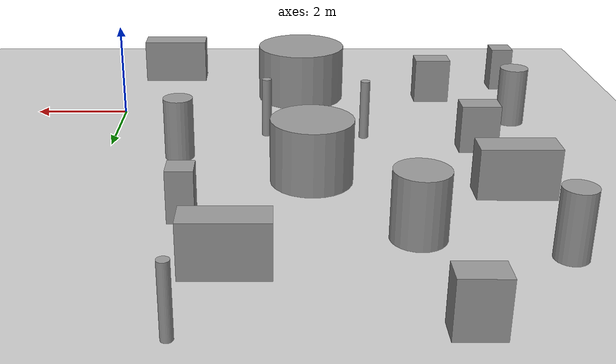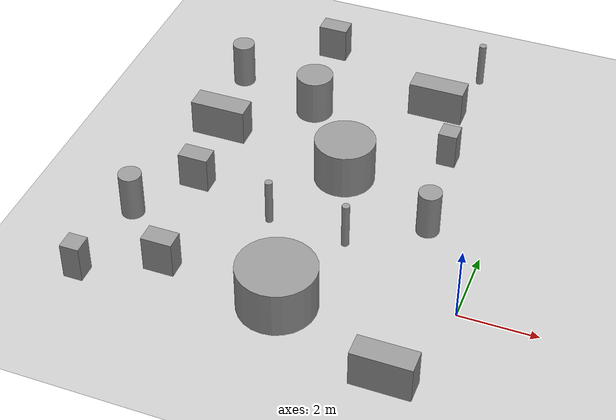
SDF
<sdf version="1.7">
 <world name="default">
  <model name="ground_plane">
   <static>1</static>
   <link name="link">
    <collision name="collision">
     <geometry><plane><normal>0 0 1</normal><size>100 100</size></plane></geometry>
     <surface>
      <contact><collide_bitmask>65535</collide_bitmask></contact>
      <friction><ode><mu>100</mu><mu2>50</mu2></ode></friction>
     </surface>
    </collision>
    <visual name="visual">
     <cast_shadows>0</cast_shadows>
     <geometry><plane><normal>0 0 1</normal><size>100 100</size></plane></geometry>
     <material>
      <script><uri>file://media/materials/scripts/gazebo.material</uri><name>Gazebo/Grey</name></script>
     </material>
    </visual>
   </link>
  </model>
  <model name="Untitled">
   <link name="link_0_clone_2">
    <inertial>
     <mass>1</mass>
     <inertia><ixx>0.145833</ixx><ixy>0</ixy><ixz>0</ixz><iyy>0.145833</iyy><iyz>0</iyz><izz>0.125</izz></inertia>
    </inertial>
    <pose>-3.58175 -0.821421 0 0 -0 0</pose>
    <visual name="visual">
     <geometry><cylinder><radius>1</radius><length>1.5</length></cylinder></geometry>
     <material>
      <lighting>1</lighting>
      <script><uri>file://media/materials/scripts/gazebo.material</uri><name>Gazebo/Grey</name></script>
      <shader type="pixel"><normal_map>__default__</normal_map></shader>
      <ambient>0.3 0.3 0.3 1</ambient>
      <diffuse>0.7 0.7 0.7 1</diffuse>
      <specular>0.01 0.01 0.01 1</specular>
      <emissive>0 0 0 1</emissive>
     </material>
    </visual>
    <collision name="collision">
     <geometry><cylinder><radius>1</radius><length>1.5</length></cylinder></geometry>
     <surface>
      <friction>
       <ode><mu>1</mu><mu2>1</mu2><fdir1>0 0 0</fdir1><slip1>0</slip1><slip2>0</slip2></ode>
       <torsional>
        <coefficient>1</coefficient>
        <patch_radius>0</patch_radius>
        <surface_radius>0</surface_radius>
        <use_patch_radius>1</use_patch_radius>
        <ode><slip>0</slip></ode>
       </torsional>
      </friction>
      <bounce><restitution_coefficient>0</restitution_coefficient><threshold>1e+06</threshold></bounce>
      <contact>
       <collide_without_contact>0</collide_without_contact>
       <collide_without_contact_bitmask>1</collide_without_contact_bitmask>
       <collide_bitmask>1</collide_bitmask>
       <ode>
        <soft_cfm>0</soft_cfm>
        <soft_erp>0.2</soft_erp>
        <kp>1e+13</kp>
        <kd>1</kd>
        <max_vel>0.01</max_vel>
        <min_depth>0</min_depth>
       </ode>
       <bullet>
        <split_impulse>1</split_impulse>
        <split_impulse_penetration_threshold>-0.01</split_impulse_penetration_threshold>
        <soft_cfm>0</soft_cfm>
        <soft_erp>0.2</soft_erp>
        <kp>1e+13</kp>
        <kd>1</kd>
       </bullet>
      </contact>
     </surface>
    </collision>
   </link>
   <link name="link_0_clone_2_clone_0_clone_clone_1">
    <inertial>
     <mass>1</mass>
     <inertia><ixx>0.145833</ixx><ixy>0</ixy><ixz>0</ixz><iyy>0.145833</iyy><iyz>0</iyz><izz>0.125</izz></inertia>
    </inertial>
    <pose>-7.75767 7.14289 0 0 -0 0</pose>
    <visual name="visual">
     <geometry><cylinder><radius>0.3</radius><length>1.5</length></cylinder></geometry>
     <material>
      <lighting>1</lighting>
      <script><uri>file://media/materials/scripts/gazebo.material</uri><name>Gazebo/Grey</name></script>
      <shader type="pixel"><normal_map>__default__</normal_map></shader>
      <ambient>0.3 0.3 0.3 1</ambient>
      <diffuse>0.7 0.7 0.7 1</diffuse>
      <specular>0.01 0.01 0.01 1</specular>
      <emissive>0 0 0 1</emissive>
     </material>
    </visual>
    <collision name="collision">
     <geometry><cylinder><radius>0.3</radius><length>1.5</length></cylinder></geometry>
     <surface>
      <friction>
       <ode><mu>1</mu><mu2>1</mu2><fdir1>0 0 0</fdir1><slip1>0</slip1><slip2>0</slip2></ode>
       <torsional>
        <coefficient>1</coefficient>
        <patch_radius>0</patch_radius>
        <surface_radius>0</surface_radius>
        <use_patch_radius>1</use_patch_radius>
        <ode><slip>0</slip></ode>
       </torsional>
      </friction>
      <bounce><restitution_coefficient>0</restitution_coefficient><threshold>1e+06</threshold></bounce>
      <contact>
       <collide_without_contact>0</collide_without_contact>
       <collide_without_contact_bitmask>1</collide_without_contact_bitmask>
       <collide_bitmask>1</collide_bitmask>
       <ode>
        <soft_cfm>0</soft_cfm>
        <soft_erp>0.2</soft_erp>
        <kp>1e+13</kp>
        <kd>1</kd>
        <max_vel>0.01</max_vel>
        <min_depth>0</min_depth>
       </ode>
       <bullet>
        <split_impulse>1</split_impulse>
        <split_impulse_penetration_threshold>-0.01</split_impulse_penetration_threshold>
        <soft_cfm>0</soft_cfm>
        <soft_erp>0.2</soft_erp>
        <kp>1e+13</kp>
        <kd>1</kd>
       </bullet>
      </contact>
     </surface>
    </collision>
   </link>
   <link name="link_0_clone_2_clone_0_clone_clone_2">
    <inertial>
     <mass>1</mass>
     <inertia><ixx>0.145833</ixx><ixy>0</ixy><ixz>0</ixz><iyy>0.145833</iyy><iyz>0</iyz><izz>0.125</izz></inertia>
    </inertial>
    <pose>-1.01347 2.94075 0 0 -0 0</pose>
    <visual name="visual">
     <geometry><cylinder><radius>0.3</radius><length>1.5</length></cylinder></geometry>
     <material>
      <lighting>1</lighting>
      <script><uri>file://media/materials/scripts/gazebo.material</uri><name>Gazebo/Grey</name></script>
      <shader type="pixel"><normal_map>__default__</normal_map></shader>
      <ambient>0.3 0.3 0.3 1</ambient>
      <diffuse>0.7 0.7 0.7 1</diffuse>
      <specular>0.01 0.01 0.01 1</specular>
      <emissive>0 0 0 1</emissive>
     </material>
    </visual>
    <collision name="collision">
     <geometry><cylinder><radius>0.3</radius><length>1.5</length></cylinder></geometry>
     <surface>
      <friction>
       <ode><mu>1</mu><mu2>1</mu2><fdir1>0 0 0</fdir1><slip1>0</slip1><slip2>0</slip2></ode>
       <torsional>
        <coefficient>1</coefficient>
        <patch_radius>0</patch_radius>
        <surface_radius>0</surface_radius>
        <use_patch_radius>1</use_patch_radius>
        <ode><slip>0</slip></ode>
       </torsional>
      </friction>
      <bounce><restitution_coefficient>0</restitution_coefficient><threshold>1e+06</threshold></bounce>
      <contact>
       <collide_without_contact>0</collide_without_contact>
       <collide_without_contact_bitmask>1</collide_without_contact_bitmask>
       <collide_bitmask>1</collide_bitmask>
       <ode>
        <soft_cfm>0</soft_cfm>
        <soft_erp>0.2</soft_erp>
        <kp>1e+13</kp>
        <kd>1</kd>
        <max_vel>0.01</max_vel>
        <min_depth>0</min_depth>
       </ode>
       <bullet>
        <split_impulse>1</split_impulse>
        <split_impulse_penetration_threshold>-0.01</split_impulse_penetration_threshold>
        <soft_cfm>0</soft_cfm>
        <soft_erp>0.2</soft_erp>
        <kp>1e+13</kp>
        <kd>1</kd>
       </bullet>
      </contact>
     </surface>
    </collision>
   </link>
   <link name="link_0_clone_2_clone_0_clone_clone_clone">
    <inertial>
     <mass>1</mass>
     <inertia><ixx>0.145833</ixx><ixy>0</ixy><ixz>0</ixz><iyy>0.145833</iyy><iyz>0</iyz><izz>0.125</izz></inertia>
    </inertial>
    <pose>-8.2311 0.933708 0 0 -0 0</pose>
    <visual name="visual">
     <geometry><cylinder><radius>0.3</radius><length>1.5</length></cylinder></geometry>
     <material>
      <lighting>1</lighting>
      <script><uri>file://media/materials/scripts/gazebo.material</uri><name>Gazebo/Grey</name></script>
      <shader type="pixel"><normal_map>__default__</normal_map></shader>
      <ambient>0.3 0.3 0.3 1</ambient>
      <diffuse>0.7 0.7 0.7 1</diffuse>
      <specular>0.01 0.01 0.01 1</specular>
      <emissive>0 0 0 1</emissive>
     </material>
    </visual>
    <collision name="collision">
     <geometry><cylinder><radius>0.3</radius><length>1.5</length></cylinder></geometry>
     <surface>
      <friction>
       <ode><mu>1</mu><mu2>1</mu2><fdir1>0 0 0</fdir1><slip1>0</slip1><slip2>0</slip2></ode>
       <torsional>
        <coefficient>1</coefficient>
        <patch_radius>0</patch_radius>
        <surface_radius>0</surface_radius>
        <use_patch_radius>1</use_patch_radius>
        <ode><slip>0</slip></ode>
       </torsional>
      </friction>
      <bounce><restitution_coefficient>0</restitution_coefficient><threshold>1e+06</threshold></bounce>
      <contact>
       <collide_without_contact>0</collide_without_contact>
       <collide_without_contact_bitmask>1</collide_without_contact_bitmask>
       <collide_bitmask>1</collide_bitmask>
       <ode>
        <soft_cfm>0</soft_cfm>
        <soft_erp>0.2</soft_erp>
        <kp>1e+13</kp>
        <kd>1</kd>
        <max_vel>0.01</max_vel>
        <min_depth>0</min_depth>
       </ode>
       <bullet>
        <split_impulse>1</split_impulse>
        <split_impulse_penetration_threshold>-0.01</split_impulse_penetration_threshold>
        <soft_cfm>0</soft_cfm>
        <soft_erp>0.2</soft_erp>
        <kp>1e+13</kp>
        <kd>1</kd>
       </bullet>
      </contact>
     </surface>
    </collision>
   </link>
   <link name="link_0_clone_2_clone_1">
    <inertial>
     <mass>1</mass>
     <inertia><ixx>0.145833</ixx><ixy>0</ixy><ixz>0</ixz><iyy>0.145833</iyy><iyz>0</iyz><izz>0.125</izz></inertia>
    </inertial>
    <pose>-3.66206 4.13062 0 0 -0 0</pose>
    <visual name="visual">
     <geometry><cylinder><radius>0.8</radius><length>1.5</length></cylinder></geometry>
     <material>
      <lighting>1</lighting>
      <script><uri>file://media/materials/scripts/gazebo.material</uri><name>Gazebo/Grey</name></script>
      <shader type="pixel"><normal_map>__default__</normal_map></shader>
      <ambient>0.3 0.3 0.3 1</ambient>
      <diffuse>0.7 0.7 0.7 1</diffuse>
      <specular>0.01 0.01 0.01 1</specular>
      <emissive>0 0 0 1</emissive>
     </material>
    </visual>
    <collision name="collision">
     <geometry><cylinder><radius>0.8</radius><length>1.5</length></cylinder></geometry>
     <surface>
      <friction>
       <ode><mu>1</mu><mu2>1</mu2><fdir1>0 0 0</fdir1><slip1>0</slip1><slip2>0</slip2></ode>
       <torsional>
        <coefficient>1</coefficient>
        <patch_radius>0</patch_radius>
        <surface_radius>0</surface_radius>
        <use_patch_radius>1</use_patch_radius>
        <ode><slip>0</slip></ode>
       </torsional>
      </friction>
      <bounce><restitution_coefficient>0</restitution_coefficient><threshold>1e+06</threshold></bounce>
      <contact>
       <collide_without_contact>0</collide_without_contact>
       <collide_without_contact_bitmask>1</collide_without_contact_bitmask>
       <collide_bitmask>1</collide_bitmask>
       <ode>
        <soft_cfm>0</soft_cfm>
        <soft_erp>0.2</soft_erp>
        <kp>1e+13</kp>
        <kd>1</kd>
        <max_vel>0.01</max_vel>
        <min_depth>0</min_depth>
       </ode>
       <bullet>
        <split_impulse>1</split_impulse>
        <split_impulse_penetration_threshold>-0.01</split_impulse_penetration_threshold>
        <soft_cfm>0</soft_cfm>
        <soft_erp>0.2</soft_erp>
        <kp>1e+13</kp>
        <kd>1</kd>
       </bullet>
      </contact>
     </surface>
    </collision>
   </link>
   <link name="link_0_clone_2_clone_clone">
    <inertial>
     <mass>1</mass>
     <inertia><ixx>0.145833</ixx><ixy>0</ixy><ixz>0</ixz><iyy>0.145833</iyy><iyz>0</iyz><izz>0.125</izz></inertia>
    </inertial>
    <pose>-5.37987 6.48036 0 0 -0 0</pose>
    <visual name="visual">
     <geometry><cylinder><radius>0.5</radius><length>1.5</length></cylinder></geometry>
     <material>
      <lighting>1</lighting>
      <script><uri>file://media/materials/scripts/gazebo.material</uri><name>Gazebo/Grey</name></script>
      <shader type="pixel"><normal_map>__default__</normal_map></shader>
      <ambient>0.3 0.3 0.3 1</ambient>
      <diffuse>0.7 0.7 0.7 1</diffuse>
      <specular>0.01 0.01 0.01 1</specular>
      <emissive>0 0 0 1</emissive>
     </material>
    </visual>
    <collision name="collision">
     <geometry><cylinder><radius>0.5</radius><length>1.5</length></cylinder></geometry>
     <surface>
      <friction>
       <ode><mu>1</mu><mu2>1</mu2><fdir1>0 0 0</fdir1><slip1>0</slip1><slip2>0</slip2></ode>
       <torsional>
        <coefficient>1</coefficient>
        <patch_radius>0</patch_radius>
        <surface_radius>0</surface_radius>
        <use_patch_radius>1</use_patch_radius>
        <ode><slip>0</slip></ode>
       </torsional>
      </friction>
      <bounce><restitution_coefficient>0</restitution_coefficient><threshold>1e+06</threshold></bounce>
      <contact>
       <collide_without_contact>0</collide_without_contact>
       <collide_without_contact_bitmask>1</collide_without_contact_bitmask>
       <collide_bitmask>1</collide_bitmask>
       <ode>
        <soft_cfm>0</soft_cfm>
        <soft_erp>0.2</soft_erp>
        <kp>1e+13</kp>
        <kd>1</kd>
        <max_vel>0.01</max_vel>
        <min_depth>0</min_depth>
       </ode>
       <bullet>
        <split_impulse>1</split_impulse>
        <split_impulse_penetration_threshold>-0.01</split_impulse_penetration_threshold>
        <soft_cfm>0</soft_cfm>
        <soft_erp>0.2</soft_erp>
        <kp>1e+13</kp>
        <kd>1</kd>
       </bullet>
      </contact>
     </surface>
    </collision>
   </link>
   <link name="link_0_clone_2_clone_clone_0">
    <inertial>
     <mass>1</mass>
     <inertia><ixx>0.145833</ixx><ixy>0</ixy><ixz>0</ixz><iyy>0.145833</iyy><iyz>0</iyz><izz>0.125</izz></inertia>
    </inertial>
    <pose>-4.86844 1.87102 0 0 -0 0</pose>
    <visual name="visual">
     <geometry><cylinder><radius>0.1</radius><length>1.5</length></cylinder></geometry>
     <material>
      <lighting>1</lighting>
      <script><uri>file://media/materials/scripts/gazebo.material</uri><name>Gazebo/Grey</name></script>
      <shader type="pixel"><normal_map>__default__</normal_map></shader>
      <ambient>0.3 0.3 0.3 1</ambient>
      <diffuse>0.7 0.7 0.7 1</diffuse>
      <specular>0.01 0.01 0.01 1</specular>
      <emissive>0 0 0 1</emissive>
     </material>
    </visual>
    <collision name="collision">
     <geometry><cylinder><radius>0.1</radius><length>1.5</length></cylinder></geometry>
     <surface>
      <friction>
       <ode><mu>1</mu><mu2>1</mu2><fdir1>0 0 0</fdir1><slip1>0</slip1><slip2>0</slip2></ode>
       <torsional>
        <coefficient>1</coefficient>
        <patch_radius>0</patch_radius>
        <surface_radius>0</surface_radius>
        <use_patch_radius>1</use_patch_radius>
        <ode><slip>0</slip></ode>
       </torsional>
      </friction>
      <bounce><restitution_coefficient>0</restitution_coefficient><threshold>1e+06</threshold></bounce>
      <contact>
       <collide_without_contact>0</collide_without_contact>
       <collide_without_contact_bitmask>1</collide_without_contact_bitmask>
       <collide_bitmask>1</collide_bitmask>
       <ode>
        <soft_cfm>0</soft_cfm>
        <soft_erp>0.2</soft_erp>
        <kp>1e+13</kp>
        <kd>1</kd>
        <max_vel>0.01</max_vel>
        <min_depth>0</min_depth>
       </ode>
       <bullet>
        <split_impulse>1</split_impulse>
        <split_impulse_penetration_threshold>-0.01</split_impulse_penetration_threshold>
        <soft_cfm>0</soft_cfm>
        <soft_erp>0.2</soft_erp>
        <kp>1e+13</kp>
        <kd>1</kd>
       </bullet>
      </contact>
     </surface>
    </collision>
   </link>
   <link name="link_0_clone_2_clone_clone_4">
    <inertial>
     <mass>1</mass>
     <inertia><ixx>0.145833</ixx><ixy>0</ixy><ixz>0</ixz><iyy>0.145833</iyy><iyz>0</iyz><izz>0.125</izz></inertia>
    </inertial>
    <pose>-1.4611 9.43155 0 0 -0 0</pose>
    <visual name="visual">
     <geometry><cylinder><radius>0.1</radius><length>1.5</length></cylinder></geometry>
     <material>
      <lighting>1</lighting>
      <script><uri>file://media/materials/scripts/gazebo.material</uri><name>Gazebo/Grey</name></script>
      <shader type="pixel"><normal_map>__default__</normal_map></shader>
      <ambient>0.3 0.3 0.3 1</ambient>
      <diffuse>0.7 0.7 0.7 1</diffuse>
      <specular>0.01 0.01 0.01 1</specular>
      <emissive>0 0 0 1</emissive>
     </material>
    </visual>
    <collision name="collision">
     <geometry><cylinder><radius>0.1</radius><length>1.5</length></cylinder></geometry>
     <surface>
      <friction>
       <ode><mu>1</mu><mu2>1</mu2><fdir1>0 0 0</fdir1><slip1>0</slip1><slip2>0</slip2></ode>
       <torsional>
        <coefficient>1</coefficient>
        <patch_radius>0</patch_radius>
        <surface_radius>0</surface_radius>
        <use_patch_radius>1</use_patch_radius>
        <ode><slip>0</slip></ode>
       </torsional>
      </friction>
      <bounce><restitution_coefficient>0</restitution_coefficient><threshold>1e+06</threshold></bounce>
      <contact>
       <collide_without_contact>0</collide_without_contact>
       <collide_without_contact_bitmask>1</collide_without_contact_bitmask>
       <collide_bitmask>1</collide_bitmask>
       <ode>
        <soft_cfm>0</soft_cfm>
        <soft_erp>0.2</soft_erp>
        <kp>1e+13</kp>
        <kd>1</kd>
        <max_vel>0.01</max_vel>
        <min_depth>0</min_depth>
       </ode>
       <bullet>
        <split_impulse>1</split_impulse>
        <split_impulse_penetration_threshold>-0.01</split_impulse_penetration_threshold>
        <soft_cfm>0</soft_cfm>
        <soft_erp>0.2</soft_erp>
        <kp>1e+13</kp>
        <kd>1</kd>
       </bullet>
      </contact>
     </surface>
    </collision>
   </link>
   <link name="link_0_clone_2_clone_clone_6_clone">
    <inertial>
     <mass>1</mass>
     <inertia><ixx>0.145833</ixx><ixy>0</ixy><ixz>0</ixz><iyy>0.145833</iyy><iyz>0</iyz><izz>0.125</izz></inertia>
    </inertial>
    <pose>-2.78369 1.73127 0 0 -0 0</pose>
    <visual name="visual">
     <geometry><cylinder><radius>0.1</radius><length>1.5</length></cylinder></geometry>
     <material>
      <lighting>1</lighting>
      <script><uri>file://media/materials/scripts/gazebo.material</uri><name>Gazebo/Grey</name></script>
      <shader type="pixel"><normal_map>__default__</normal_map></shader>
      <ambient>0.3 0.3 0.3 1</ambient>
      <diffuse>0.7 0.7 0.7 1</diffuse>
      <specular>0.01 0.01 0.01 1</specular>
      <emissive>0 0 0 1</emissive>
     </material>
    </visual>
    <collision name="collision">
     <geometry><cylinder><radius>0.1</radius><length>1.5</length></cylinder></geometry>
     <surface>
      <friction>
       <ode><mu>1</mu><mu2>1</mu2><fdir1>0 0 0</fdir1><slip1>0</slip1><slip2>0</slip2></ode>
       <torsional>
        <coefficient>1</coefficient>
        <patch_radius>0</patch_radius>
        <surface_radius>0</surface_radius>
        <use_patch_radius>1</use_patch_radius>
        <ode><slip>0</slip></ode>
       </torsional>
      </friction>
      <bounce><restitution_coefficient>0</restitution_coefficient><threshold>1e+06</threshold></bounce>
      <contact>
       <collide_without_contact>0</collide_without_contact>
       <collide_without_contact_bitmask>1</collide_without_contact_bitmask>
       <collide_bitmask>1</collide_bitmask>
       <ode>
        <soft_cfm>0</soft_cfm>
        <soft_erp>0.2</soft_erp>
        <kp>1e+13</kp>
        <kd>1</kd>
        <max_vel>0.01</max_vel>
        <min_depth>0</min_depth>
       </ode>
       <bullet>
        <split_impulse>1</split_impulse>
        <split_impulse_penetration_threshold>-0.01</split_impulse_penetration_threshold>
        <soft_cfm>0</soft_cfm>
        <soft_erp>0.2</soft_erp>
        <kp>1e+13</kp>
        <kd>1</kd>
       </bullet>
      </contact>
     </surface>
    </collision>
   </link>
   <link name="link_3_clone_0_clone">
    <inertial>
     <mass>1</mass>
     <inertia>
      <ixx>0.166667</ixx>
      <ixy>0</ixy>
      <ixz>0</ixz>
      <iyy>0.166667</iyy>
      <iyz>0</iyz>
      <izz>0.166667</izz>
     </inertia>
    </inertial>
    <pose>-1.31899 5.75105 0 0 -0 0</pose>
    <visual name="visual">
     <geometry><box><size>0.5 0.5 1</size></box></geometry>
     <material>
      <lighting>1</lighting>
      <script><uri>file://media/materials/scripts/gazebo.material</uri><name>Gazebo/Grey</name></script>
      <shader type="pixel"><normal_map>__default__</normal_map></shader>
      <ambient>0.3 0.3 0.3 1</ambient>
      <diffuse>0.7 0.7 0.7 1</diffuse>
      <specular>0.01 0.01 0.01 1</specular>
      <emissive>0 0 0 1</emissive>
     </material>
    </visual>
    <collision name="collision">
     <geometry><box><size>0.5 0.5 1</size></box></geometry>
     <surface>
      <friction>
       <ode><mu>1</mu><mu2>1</mu2><fdir1>0 0 0</fdir1><slip1>0</slip1><slip2>0</slip2></ode>
       <torsional>
        <coefficient>1</coefficient>
        <patch_radius>0</patch_radius>
        <surface_radius>0</surface_radius>
        <use_patch_radius>1</use_patch_radius>
        <ode><slip>0</slip></ode>
       </torsional>
      </friction>
      <bounce><restitution_coefficient>0</restitution_coefficient><threshold>1e+06</threshold></bounce>
      <contact>
       <collide_without_contact>0</collide_without_contact>
       <collide_without_contact_bitmask>1</collide_without_contact_bitmask>
       <collide_bitmask>1</collide_bitmask>
       <ode>
        <soft_cfm>0</soft_cfm>
        <soft_erp>0.2</soft_erp>
        <kp>1e+13</kp>
        <kd>1</kd>
        <max_vel>0.01</max_vel>
        <min_depth>0</min_depth>
       </ode>
       <bullet>
        <split_impulse>1</split_impulse>
        <split_impulse_penetration_threshold>-0.01</split_impulse_penetration_threshold>
        <soft_cfm>0</soft_cfm>
        <soft_erp>0.2</soft_erp>
        <kp>1e+13</kp>
        <kd>1</kd>
       </bullet>
      </contact>
     </surface>
    </collision>
   </link>
   <link name="link_3_clone_0_clone_1">
    <inertial>
     <mass>1</mass>
     <inertia>
      <ixx>0.166667</ixx>
      <ixy>0</ixy>
      <ixz>0</ixz>
      <iyy>0.166667</iyy>
      <iyz>0</iyz>
      <izz>0.166667</izz>
     </inertia>
    </inertial>
    <pose>-8.51357 -1.53204 0 0 -0 0</pose>
    <visual name="visual">
     <geometry><box><size>0.5 0.5 1</size></box></geometry>
     <material>
      <lighting>1</lighting>
      <script><uri>file://media/materials/scripts/gazebo.material</uri><name>Gazebo/Grey</name></script>
      <shader type="pixel"><normal_map>__default__</normal_map></shader>
      <ambient>0.3 0.3 0.3 1</ambient>
      <diffuse>0.7 0.7 0.7 1</diffuse>
      <specular>0.01 0.01 0.01 1</specular>
      <emissive>0 0 0 1</emissive>
     </material>
    </visual>
    <collision name="collision">
     <geometry><box><size>0.5 0.5 1</size></box></geometry>
     <surface>
      <friction>
       <ode><mu>1</mu><mu2>1</mu2><fdir1>0 0 0</fdir1><slip1>0</slip1><slip2>0</slip2></ode>
       <torsional>
        <coefficient>1</coefficient>
        <patch_radius>0</patch_radius>
        <surface_radius>0</surface_radius>
        <use_patch_radius>1</use_patch_radius>
        <ode><slip>0</slip></ode>
       </torsional>
      </friction>
      <bounce><restitution_coefficient>0</restitution_coefficient><threshold>1e+06</threshold></bounce>
      <contact>
       <collide_without_contact>0</collide_without_contact>
       <collide_without_contact_bitmask>1</collide_without_contact_bitmask>
       <collide_bitmask>1</collide_bitmask>
       <ode>
        <soft_cfm>0</soft_cfm>
        <soft_erp>0.2</soft_erp>
        <kp>1e+13</kp>
        <kd>1</kd>
        <max_vel>0.01</max_vel>
        <min_depth>0</min_depth>
       </ode>
       <bullet>
        <split_impulse>1</split_impulse>
        <split_impulse_penetration_threshold>-0.01</split_impulse_penetration_threshold>
        <soft_cfm>0</soft_cfm>
        <soft_erp>0.2</soft_erp>
        <kp>1e+13</kp>
        <kd>1</kd>
       </bullet>
      </contact>
     </surface>
    </collision>
   </link>
   <link name="link_3_clone_1">
    <inertial>
     <mass>1</mass>
     <inertia>
      <ixx>0.166667</ixx>
      <ixy>0</ixy>
      <ixz>0</ixz>
      <iyy>0.166667</iyy>
      <iyz>0</iyz>
      <izz>0.166667</izz>
     </inertia>
    </inertial>
    <pose>-7.15883 2.54736 0 0 -0 0</pose>
    <visual name="visual">
     <geometry><box><size>0.8 0.5 1</size></box></geometry>
     <material>
      <lighting>1</lighting>
      <script><uri>file://media/materials/scripts/gazebo.material</uri><name>Gazebo/Grey</name></script>
      <shader type="pixel"><normal_map>__default__</normal_map></shader>
      <ambient>0.3 0.3 0.3 1</ambient>
      <diffuse>0.7 0.7 0.7 1</diffuse>
      <specular>0.01 0.01 0.01 1</specular>
      <emissive>0 0 0 1</emissive>
     </material>
    </visual>
    <collision name="collision">
     <geometry><box><size>0.8 0.5 1</size></box></geometry>
     <surface>
      <friction>
       <ode><mu>1</mu><mu2>1</mu2><fdir1>0 0 0</fdir1><slip1>0</slip1><slip2>0</slip2></ode>
       <torsional>
        <coefficient>1</coefficient>
        <patch_radius>0</patch_radius>
        <surface_radius>0</surface_radius>
        <use_patch_radius>1</use_patch_radius>
        <ode><slip>0</slip></ode>
       </torsional>
      </friction>
      <bounce><restitution_coefficient>0</restitution_coefficient><threshold>1e+06</threshold></bounce>
      <contact>
       <collide_without_contact>0</collide_without_contact>
       <collide_without_contact_bitmask>1</collide_without_contact_bitmask>
       <collide_bitmask>1</collide_bitmask>
       <ode>
        <soft_cfm>0</soft_cfm>
        <soft_erp>0.2</soft_erp>
        <kp>1e+13</kp>
        <kd>1</kd>
        <max_vel>0.01</max_vel>
        <min_depth>0</min_depth>
       </ode>
       <bullet>
        <split_impulse>1</split_impulse>
        <split_impulse_penetration_threshold>-0.01</split_impulse_penetration_threshold>
        <soft_cfm>0</soft_cfm>
        <soft_erp>0.2</soft_erp>
        <kp>1e+13</kp>
        <kd>1</kd>
       </bullet>
      </contact>
     </surface>
    </collision>
   </link>
   <link name="link_3_clone_1_clone">
    <inertial>
     <mass>1</mass>
     <inertia>
      <ixx>0.166667</ixx>
      <ixy>0</ixy>
      <ixz>0</ixz>
      <iyy>0.166667</iyy>
      <iyz>0</iyz>
      <izz>0.166667</izz>
     </inertia>
    </inertial>
    <pose>-6.67372 -0.615565 0 0 -0 0</pose>
    <visual name="visual">
     <geometry><box><size>0.8 0.5 1</size></box></geometry>
     <material>
      <lighting>1</lighting>
      <script><uri>file://media/materials/scripts/gazebo.material</uri><name>Gazebo/Grey</name></script>
      <shader type="pixel"><normal_map>__default__</normal_map></shader>
      <ambient>0.3 0.3 0.3 1</ambient>
      <diffuse>0.7 0.7 0.7 1</diffuse>
      <specular>0.01 0.01 0.01 1</specular>
      <emissive>0 0 0 1</emissive>
     </material>
    </visual>
    <collision name="collision">
     <geometry><box><size>0.8 0.5 1</size></box></geometry>
     <surface>
      <friction>
       <ode><mu>1</mu><mu2>1</mu2><fdir1>0 0 0</fdir1><slip1>0</slip1><slip2>0</slip2></ode>
       <torsional>
        <coefficient>1</coefficient>
        <patch_radius>0</patch_radius>
        <surface_radius>0</surface_radius>
        <use_patch_radius>1</use_patch_radius>
        <ode><slip>0</slip></ode>
       </torsional>
      </friction>
      <bounce><restitution_coefficient>0</restitution_coefficient><threshold>1e+06</threshold></bounce>
      <contact>
       <collide_without_contact>0</collide_without_contact>
       <collide_without_contact_bitmask>1</collide_without_contact_bitmask>
       <collide_bitmask>1</collide_bitmask>
       <ode>
        <soft_cfm>0</soft_cfm>
        <soft_erp>0.2</soft_erp>
        <kp>1e+13</kp>
        <kd>1</kd>
        <max_vel>0.01</max_vel>
        <min_depth>0</min_depth>
       </ode>
       <bullet>
        <split_impulse>1</split_impulse>
        <split_impulse_penetration_threshold>-0.01</split_impulse_penetration_threshold>
        <soft_cfm>0</soft_cfm>
        <soft_erp>0.2</soft_erp>
        <kp>1e+13</kp>
        <kd>1</kd>
       </bullet>
      </contact>
     </surface>
    </collision>
   </link>
   <link name="link_3_clone_1_clone_2">
    <inertial>
     <mass>1</mass>
     <inertia>
      <ixx>0.166667</ixx>
      <ixy>0</ixy>
      <ixz>0</ixz>
      <iyy>0.166667</iyy>
      <iyz>0</iyz>
      <izz>0.166667</izz>
     </inertia>
    </inertial>
    <pose>-5.78386 9.27057 0 0 -0 0</pose>
    <visual name="visual">
     <geometry><box><size>0.8 0.5 1</size></box></geometry>
     <material>
      <lighting>1</lighting>
      <script><uri>file://media/materials/scripts/gazebo.material</uri><name>Gazebo/Grey</name></script>
      <shader type="pixel"><normal_map>__default__</normal_map></shader>
      <ambient>0.3 0.3 0.3 1</ambient>
      <diffuse>0.7 0.7 0.7 1</diffuse>
      <specular>0.01 0.01 0.01 1</specular>
      <emissive>0 0 0 1</emissive>
     </material>
    </visual>
    <collision name="collision">
     <geometry><box><size>0.8 0.5 1</size></box></geometry>
     <surface>
      <friction>
       <ode><mu>1</mu><mu2>1</mu2><fdir1>0 0 0</fdir1><slip1>0</slip1><slip2>0</slip2></ode>
       <torsional>
        <coefficient>1</coefficient>
        <patch_radius>0</patch_radius>
        <surface_radius>0</surface_radius>
        <use_patch_radius>1</use_patch_radius>
        <ode><slip>0</slip></ode>
       </torsional>
      </friction>
      <bounce><restitution_coefficient>0</restitution_coefficient><threshold>1e+06</threshold></bounce>
      <contact>
       <collide_without_contact>0</collide_without_contact>
       <collide_without_contact_bitmask>1</collide_without_contact_bitmask>
       <collide_bitmask>1</collide_bitmask>
       <ode>
        <soft_cfm>0</soft_cfm>
        <soft_erp>0.2</soft_erp>
        <kp>1e+13</kp>
        <kd>1</kd>
        <max_vel>0.01</max_vel>
        <min_depth>0</min_depth>
       </ode>
       <bullet>
        <split_impulse>1</split_impulse>
        <split_impulse_penetration_threshold>-0.01</split_impulse_penetration_threshold>
        <soft_cfm>0</soft_cfm>
        <soft_erp>0.2</soft_erp>
        <kp>1e+13</kp>
        <kd>1</kd>
       </bullet>
      </contact>
     </surface>
    </collision>
   </link>
   <link name="link_3_clone_clone">
    <inertial>
     <mass>1</mass>
     <inertia>
      <ixx>0.166667</ixx>
      <ixy>0</ixy>
      <ixz>0</ixz>
      <iyy>0.166667</iyy>
      <iyz>0</iyz>
      <izz>0.166667</izz>
     </inertia>
    </inertial>
    <pose>-2.17931 7.60774 0 0 -0 0</pose>
    <visual name="visual">
     <geometry><box><size>1.5 0.6 1</size></box></geometry>
     <material>
      <lighting>1</lighting>
      <script><uri>file://media/materials/scripts/gazebo.material</uri><name>Gazebo/Grey</name></script>
      <shader type="pixel"><normal_map>__default__</normal_map></shader>
      <ambient>0.3 0.3 0.3 1</ambient>
      <diffuse>0.7 0.7 0.7 1</diffuse>
      <specular>0.01 0.01 0.01 1</specular>
      <emissive>0 0 0 1</emissive>
     </material>
    </visual>
    <collision name="collision">
     <geometry><box><size>1.5 0.6 1</size></box></geometry>
     <surface>
      <friction>
       <ode><mu>1</mu><mu2>1</mu2><fdir1>0 0 0</fdir1><slip1>0</slip1><slip2>0</slip2></ode>
       <torsional>
        <coefficient>1</coefficient>
        <patch_radius>0</patch_radius>
        <surface_radius>0</surface_radius>
        <use_patch_radius>1</use_patch_radius>
        <ode><slip>0</slip></ode>
       </torsional>
      </friction>
      <bounce><restitution_coefficient>0</restitution_coefficient><threshold>1e+06</threshold></bounce>
      <contact>
       <collide_without_contact>0</collide_without_contact>
       <collide_without_contact_bitmask>1</collide_without_contact_bitmask>
       <collide_bitmask>1</collide_bitmask>
       <ode>
        <soft_cfm>0</soft_cfm>
        <soft_erp>0.2</soft_erp>
        <kp>1e+13</kp>
        <kd>1</kd>
        <max_vel>0.01</max_vel>
        <min_depth>0</min_depth>
       </ode>
       <bullet>
        <split_impulse>1</split_impulse>
        <split_impulse_penetration_threshold>-0.01</split_impulse_penetration_threshold>
        <soft_cfm>0</soft_cfm>
        <soft_erp>0.2</soft_erp>
        <kp>1e+13</kp>
        <kd>1</kd>
       </bullet>
      </contact>
     </surface>
    </collision>
   </link>
   <link name="link_3_clone_clone_clone_0">
    <inertial>
     <mass>1</mass>
     <inertia>
      <ixx>0.166667</ixx>
      <ixy>0</ixy>
      <ixz>0</ixz>
      <iyy>0.166667</iyy>
      <iyz>0</iyz>
      <izz>0.166667</izz>
     </inertia>
    </inertial>
    <pose>-7.40957 4.74465 0 0 -0 0</pose>
    <visual name="visual">
     <geometry><box><size>1.5 0.6 1</size></box></geometry>
     <material>
      <lighting>1</lighting>
      <script><uri>file://media/materials/scripts/gazebo.material</uri><name>Gazebo/Grey</name></script>
      <shader type="pixel"><normal_map>__default__</normal_map></shader>
      <ambient>0.3 0.3 0.3 1</ambient>
      <diffuse>0.7 0.7 0.7 1</diffuse>
      <specular>0.01 0.01 0.01 1</specular>
      <emissive>0 0 0 1</emissive>
     </material>
    </visual>
    <collision name="collision">
     <geometry><box><size>1.5 0.6 1</size></box></geometry>
     <surface>
      <friction>
       <ode><mu>1</mu><mu2>1</mu2><fdir1>0 0 0</fdir1><slip1>0</slip1><slip2>0</slip2></ode>
       <torsional>
        <coefficient>1</coefficient>
        <patch_radius>0</patch_radius>
        <surface_radius>0</surface_radius>
        <use_patch_radius>1</use_patch_radius>
        <ode><slip>0</slip></ode>
       </torsional>
      </friction>
      <bounce><restitution_coefficient>0</restitution_coefficient><threshold>1e+06</threshold></bounce>
      <contact>
       <collide_without_contact>0</collide_without_contact>
       <collide_without_contact_bitmask>1</collide_without_contact_bitmask>
       <collide_bitmask>1</collide_bitmask>
       <ode>
        <soft_cfm>0</soft_cfm>
        <soft_erp>0.2</soft_erp>
        <kp>1e+13</kp>
        <kd>1</kd>
        <max_vel>0.01</max_vel>
        <min_depth>0</min_depth>
       </ode>
       <bullet>
        <split_impulse>1</split_impulse>
        <split_impulse_penetration_threshold>-0.01</split_impulse_penetration_threshold>
        <soft_cfm>0</soft_cfm>
        <soft_erp>0.2</soft_erp>
        <kp>1e+13</kp>
        <kd>1</kd>
       </bullet>
      </contact>
     </surface>
    </collision>
   </link>
   <link name="link_3_clone_clone_clone_2">
    <inertial>
     <mass>1</mass>
     <inertia>
      <ixx>0.166667</ixx>
      <ixy>0</ixy>
      <ixz>0</ixz>
      <iyy>0.166667</iyy>
      <iyz>0</iyz>
      <izz>0.166667</izz>
     </inertia>
    </inertial>
    <pose>-0.456116 -2.24203 0 0 -0 0</pose>
    <visual name="visual">
     <geometry><box><size>1.5 0.6 1</size></box></geometry>
     <material>
      <lighting>1</lighting>
      <script><uri>file://media/materials/scripts/gazebo.material</uri><name>Gazebo/Grey</name></script>
      <shader type="pixel"><normal_map>__default__</normal_map></shader>
      <ambient>0.3 0.3 0.3 1</ambient>
      <diffuse>0.7 0.7 0.7 1</diffuse>
      <specular>0.01 0.01 0.01 1</specular>
      <emissive>0 0 0 1</emissive>
     </material>
    </visual>
    <collision name="collision">
     <geometry><box><size>1.5 0.6 1</size></box></geometry>
     <surface>
      <friction>
       <ode><mu>1</mu><mu2>1</mu2><fdir1>0 0 0</fdir1><slip1>0</slip1><slip2>0</slip2></ode>
       <torsional>
        <coefficient>1</coefficient>
        <patch_radius>0</patch_radius>
        <surface_radius>0</surface_radius>
        <use_patch_radius>1</use_patch_radius>
        <ode><slip>0</slip></ode>
       </torsional>
      </friction>
      <bounce><restitution_coefficient>0</restitution_coefficient><threshold>1e+06</threshold></bounce>
      <contact>
       <collide_without_contact>0</collide_without_contact>
       <collide_without_contact_bitmask>1</collide_without_contact_bitmask>
       <collide_bitmask>1</collide_bitmask>
       <ode>
        <soft_cfm>0</soft_cfm>
        <soft_erp>0.2</soft_erp>
        <kp>1e+13</kp>
        <kd>1</kd>
        <max_vel>0.01</max_vel>
        <min_depth>0</min_depth>
       </ode>
       <bullet>
        <split_impulse>1</split_impulse>
        <split_impulse_penetration_threshold>-0.01</split_impulse_penetration_threshold>
        <soft_cfm>0</soft_cfm>
        <soft_erp>0.2</soft_erp>
        <kp>1e+13</kp>
        <kd>1</kd>
       </bullet>
      </contact>
     </surface>
    </collision>
   </link>
   <static>0</static>
   <pose>-0.488633 -0.355409 0.5 0 -0 0</pose>
  </model>
 </world>
</sdf>
